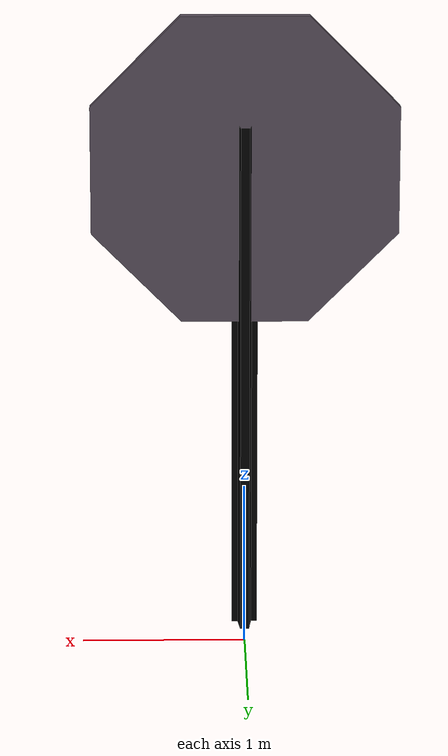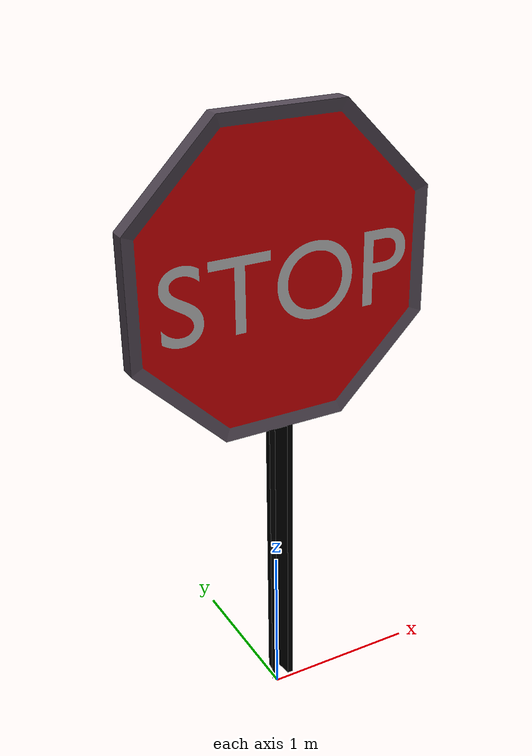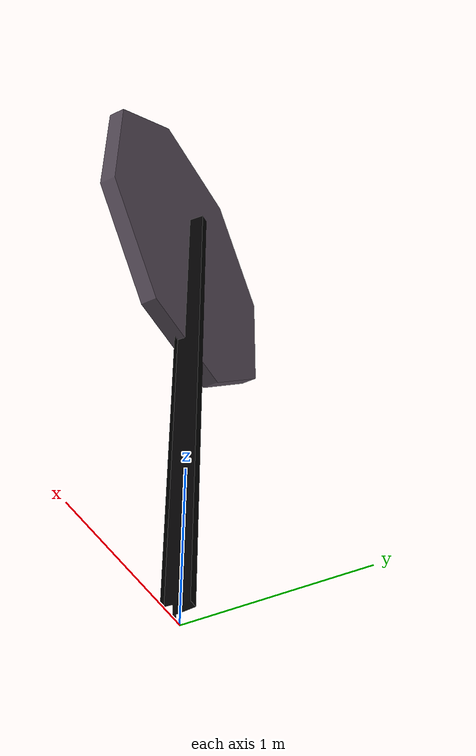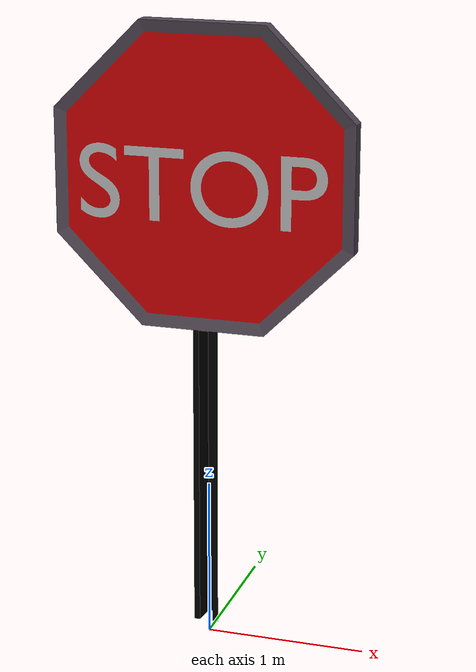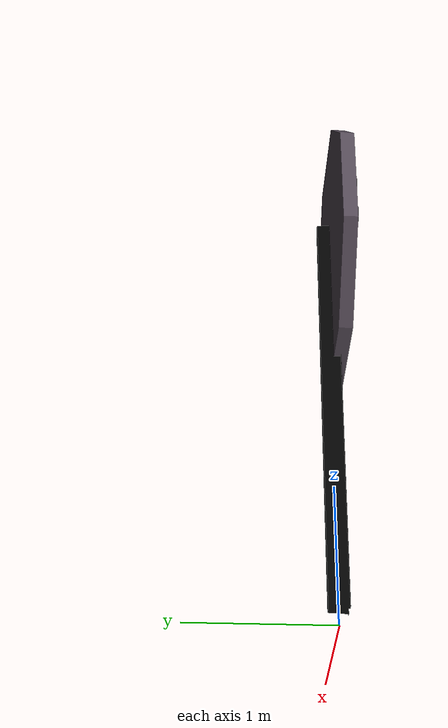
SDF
<?xml version="1.0"?>
<sdf version="1.4">
  <model name="Stop Sign">
    <link name="link">
      <collision name="collision">
        <geometry>
          <mesh>
            <uri>file:///home/dalitso/src/senior_design/Autonomous-Vehicle-End-to-End-Control-Project/install/gazebo_project/share/gazebo_project/model/stop_sign/meshes/stop_sign.dae</uri>
          </mesh>
        </geometry>
      </collision>
      <visual name="visual">
        <geometry>
          <mesh>
            <uri>file:///home/dalitso/src/senior_design/Autonomous-Vehicle-End-to-End-Control-Project/install/gazebo_project/share/gazebo_project/model/stop_sign/meshes/stop_sign.dae</uri>
          </mesh>
        </geometry>
        <material>
          <script>
            <uri>file:///home/dalitso/src/senior_design/Autonomous-Vehicle-End-to-End-Control-Project/install/gazebo_project/share/gazebo_project/model/stop_sign/materials/scripts</uri>
            <uri>file:///home/dalitso/src/senior_design/Autonomous-Vehicle-End-to-End-Control-Project/install/gazebo_project/share/gazebo_project/model/stop_sign/materials/textures</uri>
            <name>StopSign/Diffuse</name>
          </script>
        </material>
      </visual>
    </link>
  </model>
</sdf>
